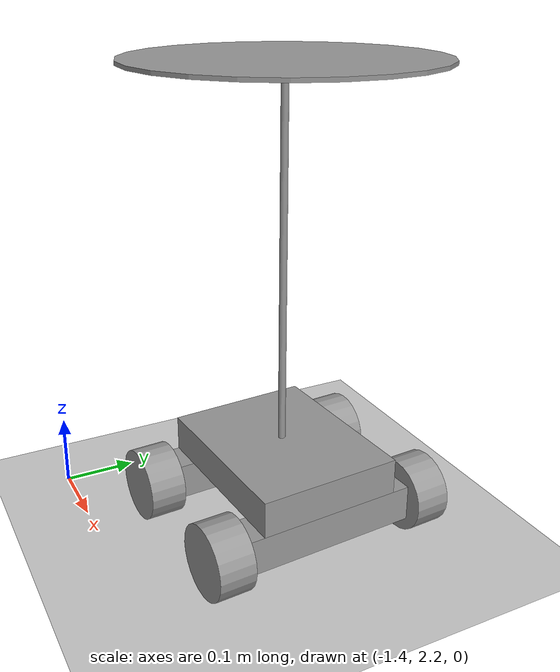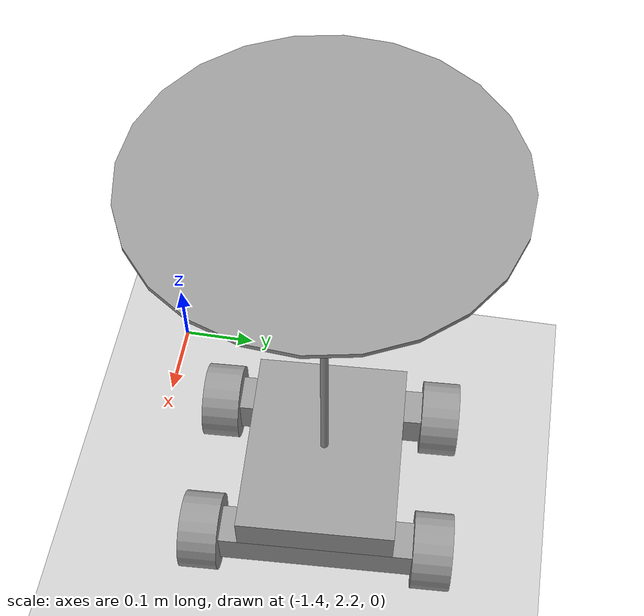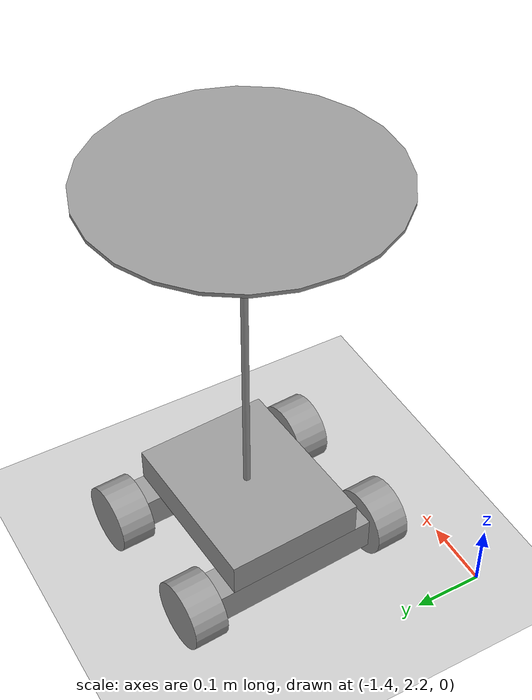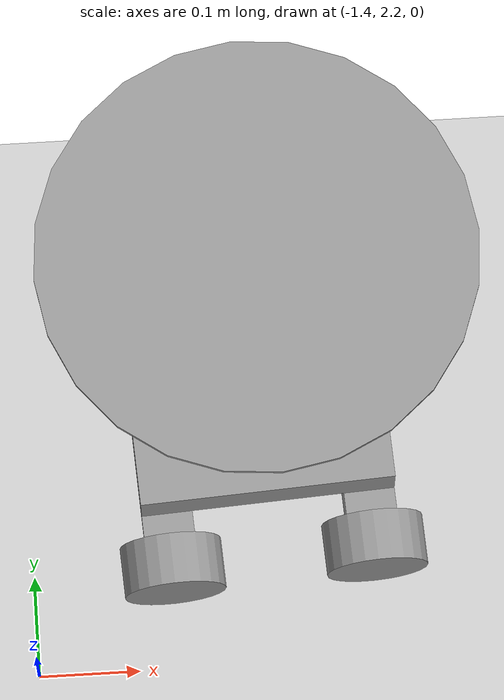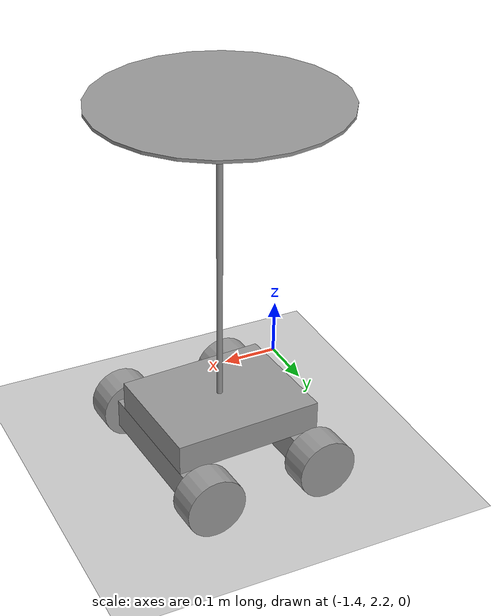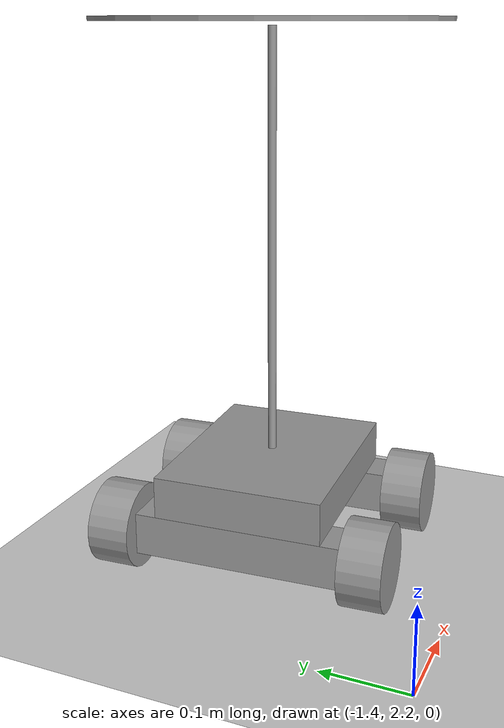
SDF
<sdf version="1.6">
 <world name="default">
  <model name="ground_plane">
   <static>1</static>
   <link name="link">
    <collision name="collision">
     <geometry><plane><normal>0 0 1</normal><size>100 100</size></plane></geometry>
     <surface><friction><ode><mu>100</mu><mu2>50</mu2></ode></friction></surface>
    </collision>
    <visual name="visual">
     <cast_shadows>0</cast_shadows>
     <geometry><plane><normal>0 0 1</normal><size>100 100</size></plane></geometry>
     <material>
      <script><uri>file://media/materials/scripts/gazebo.material</uri><name>Gazebo/Grey</name></script>
     </material>
    </visual>
   </link>
  </model>
  <model name="carry-o-matic">
   <link name="link_0">
    <pose>0.1 -0 -0.049667 0 -0 0</pose>
    <inertial>
     <mass>1</mass>
     <inertia>
      <ixx>0.166667</ixx>
      <ixy>0</ixy>
      <ixz>0</ixz>
      <iyy>0.166667</iyy>
      <iyz>0</iyz>
      <izz>0.166667</izz>
     </inertia>
    </inertial>
    <visual name="visual">
     <geometry><box><size>0.05 0.25 0.05</size></box></geometry>
     <material>
      <lighting>1</lighting>
      <script><uri>file://media/materials/scripts/gazebo.material</uri><name>Gazebo/Grey</name></script>
      <ambient>0.3 0.3 0.3 1</ambient>
      <diffuse>0.7 0.7 0.7 1</diffuse>
      <specular>0.01 0.01 0.01 1</specular>
      <emissive>0 0 0 1</emissive>
      <shader type="vertex"><normal_map>__default__</normal_map></shader>
     </material>
    </visual>
    <collision name="collision">
     <geometry><box><size>0.05 0.25 0.05</size></box></geometry>
     <surface>
      <friction>
       <ode><mu>1</mu><mu2>1</mu2><fdir1>0 0 0</fdir1><slip1>0</slip1><slip2>0</slip2></ode>
       <torsional>
        <coefficient>1</coefficient>
        <patch_radius>0</patch_radius>
        <surface_radius>0</surface_radius>
        <use_patch_radius>1</use_patch_radius>
        <ode><slip>0</slip></ode>
       </torsional>
      </friction>
      <bounce><restitution_coefficient>0</restitution_coefficient><threshold>1e+06</threshold></bounce>
      <contact>
       <collide_without_contact>0</collide_without_contact>
       <collide_without_contact_bitmask>1</collide_without_contact_bitmask>
       <collide_bitmask>1</collide_bitmask>
       <ode>
        <soft_cfm>0</soft_cfm>
        <soft_erp>0.2</soft_erp>
        <kp>1e+13</kp>
        <kd>1</kd>
        <max_vel>0.01</max_vel>
        <min_depth>0</min_depth>
       </ode>
       <bullet>
        <split_impulse>1</split_impulse>
        <split_impulse_penetration_threshold>-0.01</split_impulse_penetration_threshold>
        <soft_cfm>0</soft_cfm>
        <soft_erp>0.2</soft_erp>
        <kp>1e+13</kp>
        <kd>1</kd>
       </bullet>
      </contact>
     </surface>
    </collision>
   </link>
   <link name="link_0_clone">
    <pose>-0.1 -0 -0.049667 0 -0 0</pose>
    <inertial>
     <mass>1</mass>
     <inertia>
      <ixx>0.166667</ixx>
      <ixy>0</ixy>
      <ixz>0</ixz>
      <iyy>0.166667</iyy>
      <iyz>0</iyz>
      <izz>0.166667</izz>
     </inertia>
    </inertial>
    <visual name="visual">
     <geometry><box><size>0.05 0.25 0.05</size></box></geometry>
     <material>
      <lighting>1</lighting>
      <script><uri>file://media/materials/scripts/gazebo.material</uri><name>Gazebo/Grey</name></script>
      <ambient>0.3 0.3 0.3 1</ambient>
      <diffuse>0.7 0.7 0.7 1</diffuse>
      <specular>0.01 0.01 0.01 1</specular>
      <emissive>0 0 0 1</emissive>
      <shader type="vertex"><normal_map>__default__</normal_map></shader>
     </material>
    </visual>
    <collision name="collision">
     <geometry><box><size>0.05 0.25 0.05</size></box></geometry>
     <surface>
      <friction>
       <ode><mu>1</mu><mu2>1</mu2><fdir1>0 0 0</fdir1><slip1>0</slip1><slip2>0</slip2></ode>
       <torsional>
        <coefficient>1</coefficient>
        <patch_radius>0</patch_radius>
        <surface_radius>0</surface_radius>
        <use_patch_radius>1</use_patch_radius>
        <ode><slip>0</slip></ode>
       </torsional>
      </friction>
      <bounce><restitution_coefficient>0</restitution_coefficient><threshold>1e+06</threshold></bounce>
      <contact>
       <collide_without_contact>0</collide_without_contact>
       <collide_without_contact_bitmask>1</collide_without_contact_bitmask>
       <collide_bitmask>1</collide_bitmask>
       <ode>
        <soft_cfm>0</soft_cfm>
        <soft_erp>0.2</soft_erp>
        <kp>1e+13</kp>
        <kd>1</kd>
        <max_vel>0.01</max_vel>
        <min_depth>0</min_depth>
       </ode>
       <bullet>
        <split_impulse>1</split_impulse>
        <split_impulse_penetration_threshold>-0.01</split_impulse_penetration_threshold>
        <soft_cfm>0</soft_cfm>
        <soft_erp>0.2</soft_erp>
        <kp>1e+13</kp>
        <kd>1</kd>
       </bullet>
      </contact>
     </surface>
    </collision>
   </link>
   <link name="link_1">
    <pose>0.1 -0.150013 -0.049667 1.5707 -0 0</pose>
    <inertial>
     <mass>1</mass>
     <inertia><ixx>0.145833</ixx><ixy>0</ixy><ixz>0</ixz><iyy>0.145833</iyy><iyz>0</iyz><izz>0.125</izz></inertia>
    </inertial>
    <visual name="visual">
     <geometry><cylinder><radius>0.05</radius><length>0.05</length></cylinder></geometry>
     <material>
      <lighting>1</lighting>
      <script><uri>file://media/materials/scripts/gazebo.material</uri><name>Gazebo/Grey</name></script>
      <ambient>0.3 0.3 0.3 1</ambient>
      <diffuse>0.7 0.7 0.7 1</diffuse>
      <specular>0.01 0.01 0.01 1</specular>
      <emissive>0 0 0 1</emissive>
      <shader type="vertex"><normal_map>__default__</normal_map></shader>
     </material>
    </visual>
    <collision name="collision">
     <geometry><cylinder><radius>0.05</radius><length>0.05</length></cylinder></geometry>
     <surface>
      <friction>
       <ode><mu>1</mu><mu2>1</mu2><fdir1>0 0 0</fdir1><slip1>0</slip1><slip2>0</slip2></ode>
       <torsional>
        <coefficient>1</coefficient>
        <patch_radius>0</patch_radius>
        <surface_radius>0</surface_radius>
        <use_patch_radius>1</use_patch_radius>
        <ode><slip>0</slip></ode>
       </torsional>
      </friction>
      <bounce><restitution_coefficient>0</restitution_coefficient><threshold>1e+06</threshold></bounce>
      <contact>
       <collide_without_contact>0</collide_without_contact>
       <collide_without_contact_bitmask>1</collide_without_contact_bitmask>
       <collide_bitmask>1</collide_bitmask>
       <ode>
        <soft_cfm>0</soft_cfm>
        <soft_erp>0.2</soft_erp>
        <kp>1e+13</kp>
        <kd>1</kd>
        <max_vel>0.01</max_vel>
        <min_depth>0</min_depth>
       </ode>
       <bullet>
        <split_impulse>1</split_impulse>
        <split_impulse_penetration_threshold>-0.01</split_impulse_penetration_threshold>
        <soft_cfm>0</soft_cfm>
        <soft_erp>0.2</soft_erp>
        <kp>1e+13</kp>
        <kd>1</kd>
       </bullet>
      </contact>
     </surface>
    </collision>
   </link>
   <link name="link_1_clone">
    <pose>0.1 0.15 -0.049667 1.5707 -0 0</pose>
    <inertial>
     <mass>1</mass>
     <inertia><ixx>0.145833</ixx><ixy>0</ixy><ixz>0</ixz><iyy>0.145833</iyy><iyz>0</iyz><izz>0.125</izz></inertia>
    </inertial>
    <visual name="visual">
     <geometry><cylinder><radius>0.05</radius><length>0.05</length></cylinder></geometry>
     <material>
      <lighting>1</lighting>
      <script><uri>file://media/materials/scripts/gazebo.material</uri><name>Gazebo/Grey</name></script>
      <ambient>0.3 0.3 0.3 1</ambient>
      <diffuse>0.7 0.7 0.7 1</diffuse>
      <specular>0.01 0.01 0.01 1</specular>
      <emissive>0 0 0 1</emissive>
      <shader type="vertex"><normal_map>__default__</normal_map></shader>
     </material>
    </visual>
    <collision name="collision">
     <geometry><cylinder><radius>0.05</radius><length>0.05</length></cylinder></geometry>
     <surface>
      <friction>
       <ode><mu>1</mu><mu2>1</mu2><fdir1>0 0 0</fdir1><slip1>0</slip1><slip2>0</slip2></ode>
       <torsional>
        <coefficient>1</coefficient>
        <patch_radius>0</patch_radius>
        <surface_radius>0</surface_radius>
        <use_patch_radius>1</use_patch_radius>
        <ode><slip>0</slip></ode>
       </torsional>
      </friction>
      <bounce><restitution_coefficient>0</restitution_coefficient><threshold>1e+06</threshold></bounce>
      <contact>
       <collide_without_contact>0</collide_without_contact>
       <collide_without_contact_bitmask>1</collide_without_contact_bitmask>
       <collide_bitmask>1</collide_bitmask>
       <ode>
        <soft_cfm>0</soft_cfm>
        <soft_erp>0.2</soft_erp>
        <kp>1e+13</kp>
        <kd>1</kd>
        <max_vel>0.01</max_vel>
        <min_depth>0</min_depth>
       </ode>
       <bullet>
        <split_impulse>1</split_impulse>
        <split_impulse_penetration_threshold>-0.01</split_impulse_penetration_threshold>
        <soft_cfm>0</soft_cfm>
        <soft_erp>0.2</soft_erp>
        <kp>1e+13</kp>
        <kd>1</kd>
       </bullet>
      </contact>
     </surface>
    </collision>
   </link>
   <link name="link_1_clone_0">
    <pose>-0.1 -0.150005 -0.049667 1.5707 -0 0</pose>
    <inertial>
     <mass>1</mass>
     <inertia><ixx>0.145833</ixx><ixy>0</ixy><ixz>0</ixz><iyy>0.145833</iyy><iyz>0</iyz><izz>0.125</izz></inertia>
    </inertial>
    <visual name="visual">
     <geometry><cylinder><radius>0.05</radius><length>0.05</length></cylinder></geometry>
     <material>
      <lighting>1</lighting>
      <script><uri>file://media/materials/scripts/gazebo.material</uri><name>Gazebo/Grey</name></script>
      <ambient>0.3 0.3 0.3 1</ambient>
      <diffuse>0.7 0.7 0.7 1</diffuse>
      <specular>0.01 0.01 0.01 1</specular>
      <emissive>0 0 0 1</emissive>
      <shader type="vertex"><normal_map>__default__</normal_map></shader>
     </material>
    </visual>
    <collision name="collision">
     <geometry><cylinder><radius>0.05</radius><length>0.05</length></cylinder></geometry>
     <surface>
      <friction>
       <ode><mu>1</mu><mu2>1</mu2><fdir1>0 0 0</fdir1><slip1>0</slip1><slip2>0</slip2></ode>
       <torsional>
        <coefficient>1</coefficient>
        <patch_radius>0</patch_radius>
        <surface_radius>0</surface_radius>
        <use_patch_radius>1</use_patch_radius>
        <ode><slip>0</slip></ode>
       </torsional>
      </friction>
      <bounce><restitution_coefficient>0</restitution_coefficient><threshold>1e+06</threshold></bounce>
      <contact>
       <collide_without_contact>0</collide_without_contact>
       <collide_without_contact_bitmask>1</collide_without_contact_bitmask>
       <collide_bitmask>1</collide_bitmask>
       <ode>
        <soft_cfm>0</soft_cfm>
        <soft_erp>0.2</soft_erp>
        <kp>1e+13</kp>
        <kd>1</kd>
        <max_vel>0.01</max_vel>
        <min_depth>0</min_depth>
       </ode>
       <bullet>
        <split_impulse>1</split_impulse>
        <split_impulse_penetration_threshold>-0.01</split_impulse_penetration_threshold>
        <soft_cfm>0</soft_cfm>
        <soft_erp>0.2</soft_erp>
        <kp>1e+13</kp>
        <kd>1</kd>
       </bullet>
      </contact>
     </surface>
    </collision>
   </link>
   <link name="link_1_clone_1">
    <pose>-0.1 0.150005 -0.049667 1.5707 -0 0</pose>
    <inertial>
     <mass>1</mass>
     <inertia><ixx>0.145833</ixx><ixy>0</ixy><ixz>0</ixz><iyy>0.145833</iyy><iyz>0</iyz><izz>0.125</izz></inertia>
    </inertial>
    <visual name="visual">
     <geometry><cylinder><radius>0.05</radius><length>0.05</length></cylinder></geometry>
     <material>
      <lighting>1</lighting>
      <script><uri>file://media/materials/scripts/gazebo.material</uri><name>Gazebo/Grey</name></script>
      <ambient>0.3 0.3 0.3 1</ambient>
      <diffuse>0.7 0.7 0.7 1</diffuse>
      <specular>0.01 0.01 0.01 1</specular>
      <emissive>0 0 0 1</emissive>
      <shader type="vertex"><normal_map>__default__</normal_map></shader>
     </material>
    </visual>
    <collision name="collision">
     <geometry><cylinder><radius>0.05</radius><length>0.05</length></cylinder></geometry>
     <surface>
      <friction>
       <ode><mu>1</mu><mu2>1</mu2><fdir1>0 0 0</fdir1><slip1>0</slip1><slip2>0</slip2></ode>
       <torsional>
        <coefficient>1</coefficient>
        <patch_radius>0</patch_radius>
        <surface_radius>0</surface_radius>
        <use_patch_radius>1</use_patch_radius>
        <ode><slip>0</slip></ode>
       </torsional>
      </friction>
      <bounce><restitution_coefficient>0</restitution_coefficient><threshold>1e+06</threshold></bounce>
      <contact>
       <collide_without_contact>0</collide_without_contact>
       <collide_without_contact_bitmask>1</collide_without_contact_bitmask>
       <collide_bitmask>1</collide_bitmask>
       <ode>
        <soft_cfm>0</soft_cfm>
        <soft_erp>0.2</soft_erp>
        <kp>1e+13</kp>
        <kd>1</kd>
        <max_vel>0.01</max_vel>
        <min_depth>0</min_depth>
       </ode>
       <bullet>
        <split_impulse>1</split_impulse>
        <split_impulse_penetration_threshold>-0.01</split_impulse_penetration_threshold>
        <soft_cfm>0</soft_cfm>
        <soft_erp>0.2</soft_erp>
        <kp>1e+13</kp>
        <kd>1</kd>
       </bullet>
      </contact>
     </surface>
    </collision>
   </link>
   <link name="link_2">
    <pose>0 -0 0.000333 0 -0 0</pose>
    <inertial>
     <mass>1</mass>
     <inertia>
      <ixx>0.166667</ixx>
      <ixy>0</ixy>
      <ixz>0</ixz>
      <iyy>0.166667</iyy>
      <iyz>0</iyz>
      <izz>0.166667</izz>
     </inertia>
    </inertial>
    <visual name="visual">
     <geometry><box><size>0.25 0.2 0.05</size></box></geometry>
     <material>
      <lighting>1</lighting>
      <script><uri>file://media/materials/scripts/gazebo.material</uri><name>Gazebo/Grey</name></script>
      <ambient>0.3 0.3 0.3 1</ambient>
      <diffuse>0.7 0.7 0.7 1</diffuse>
      <specular>0.01 0.01 0.01 1</specular>
      <emissive>0 0 0 1</emissive>
      <shader type="vertex"><normal_map>__default__</normal_map></shader>
     </material>
    </visual>
    <collision name="collision">
     <geometry><box><size>0.25 0.2 0.05</size></box></geometry>
     <surface>
      <friction>
       <ode><mu>1</mu><mu2>1</mu2><fdir1>0 0 0</fdir1><slip1>0</slip1><slip2>0</slip2></ode>
       <torsional>
        <coefficient>1</coefficient>
        <patch_radius>0</patch_radius>
        <surface_radius>0</surface_radius>
        <use_patch_radius>1</use_patch_radius>
        <ode><slip>0</slip></ode>
       </torsional>
      </friction>
      <bounce><restitution_coefficient>0</restitution_coefficient><threshold>1e+06</threshold></bounce>
      <contact>
       <collide_without_contact>0</collide_without_contact>
       <collide_without_contact_bitmask>1</collide_without_contact_bitmask>
       <collide_bitmask>1</collide_bitmask>
       <ode>
        <soft_cfm>0</soft_cfm>
        <soft_erp>0.2</soft_erp>
        <kp>1e+13</kp>
        <kd>1</kd>
        <max_vel>0.01</max_vel>
        <min_depth>0</min_depth>
       </ode>
       <bullet>
        <split_impulse>1</split_impulse>
        <split_impulse_penetration_threshold>-0.01</split_impulse_penetration_threshold>
        <soft_cfm>0</soft_cfm>
        <soft_erp>0.2</soft_erp>
        <kp>1e+13</kp>
        <kd>1</kd>
       </bullet>
      </contact>
     </surface>
    </collision>
   </link>
   <link name="link_3">
    <pose>0 -2e-06 0.277476 0 -0 0</pose>
    <inertial>
     <mass>1</mass>
     <inertia><ixx>0.145833</ixx><ixy>0</ixy><ixz>0</ixz><iyy>0.145833</iyy><iyz>0</iyz><izz>0.125</izz></inertia>
    </inertial>
    <visual name="visual">
     <geometry><cylinder><radius>0.005</radius><length>0.5</length></cylinder></geometry>
     <material>
      <lighting>1</lighting>
      <script><uri>file://media/materials/scripts/gazebo.material</uri><name>Gazebo/Grey</name></script>
      <ambient>0.3 0.3 0.3 1</ambient>
      <diffuse>0.7 0.7 0.7 1</diffuse>
      <specular>0.01 0.01 0.01 1</specular>
      <emissive>0 0 0 1</emissive>
      <shader type="vertex"><normal_map>__default__</normal_map></shader>
     </material>
    </visual>
    <collision name="collision">
     <geometry><cylinder><radius>0.005</radius><length>0.5</length></cylinder></geometry>
     <surface>
      <friction>
       <ode><mu>1</mu><mu2>1</mu2><fdir1>0 0 0</fdir1><slip1>0</slip1><slip2>0</slip2></ode>
       <torsional>
        <coefficient>1</coefficient>
        <patch_radius>0</patch_radius>
        <surface_radius>0</surface_radius>
        <use_patch_radius>1</use_patch_radius>
        <ode><slip>0</slip></ode>
       </torsional>
      </friction>
      <bounce><restitution_coefficient>0</restitution_coefficient><threshold>1e+06</threshold></bounce>
      <contact>
       <collide_without_contact>0</collide_without_contact>
       <collide_without_contact_bitmask>1</collide_without_contact_bitmask>
       <collide_bitmask>1</collide_bitmask>
       <ode>
        <soft_cfm>0</soft_cfm>
        <soft_erp>0.2</soft_erp>
        <kp>1e+13</kp>
        <kd>1</kd>
        <max_vel>0.01</max_vel>
        <min_depth>0</min_depth>
       </ode>
       <bullet>
        <split_impulse>1</split_impulse>
        <split_impulse_penetration_threshold>-0.01</split_impulse_penetration_threshold>
        <soft_cfm>0</soft_cfm>
        <soft_erp>0.2</soft_erp>
        <kp>1e+13</kp>
        <kd>1</kd>
       </bullet>
      </contact>
     </surface>
    </collision>
   </link>
   <link name="link_4">
    <pose>0 -2e-06 0.534476 0 -0 0</pose>
    <inertial>
     <mass>1</mass>
     <inertia><ixx>0.145833</ixx><ixy>0</ixy><ixz>0</ixz><iyy>0.145833</iyy><iyz>0</iyz><izz>0.125</izz></inertia>
    </inertial>
    <visual name="visual">
     <geometry><cylinder><radius>0.2</radius><length>0.005</length></cylinder></geometry>
     <material>
      <lighting>1</lighting>
      <script><uri>file://media/materials/scripts/gazebo.material</uri><name>Gazebo/Grey</name></script>
      <ambient>0.3 0.3 0.3 1</ambient>
      <diffuse>0.7 0.7 0.7 1</diffuse>
      <specular>0.01 0.01 0.01 1</specular>
      <emissive>0 0 0 1</emissive>
      <shader type="vertex"><normal_map>__default__</normal_map></shader>
     </material>
    </visual>
    <collision name="collision">
     <geometry><cylinder><radius>0.2</radius><length>0.005</length></cylinder></geometry>
     <surface>
      <friction>
       <ode><mu>1</mu><mu2>1</mu2><fdir1>0 0 0</fdir1><slip1>0</slip1><slip2>0</slip2></ode>
       <torsional>
        <coefficient>1</coefficient>
        <patch_radius>0</patch_radius>
        <surface_radius>0</surface_radius>
        <use_patch_radius>1</use_patch_radius>
        <ode><slip>0</slip></ode>
       </torsional>
      </friction>
      <bounce><restitution_coefficient>0</restitution_coefficient><threshold>1e+06</threshold></bounce>
      <contact>
       <collide_without_contact>0</collide_without_contact>
       <collide_without_contact_bitmask>1</collide_without_contact_bitmask>
       <collide_bitmask>1</collide_bitmask>
       <ode>
        <soft_cfm>0</soft_cfm>
        <soft_erp>0.2</soft_erp>
        <kp>1e+13</kp>
        <kd>1</kd>
        <max_vel>0.01</max_vel>
        <min_depth>0</min_depth>
       </ode>
       <bullet>
        <split_impulse>1</split_impulse>
        <split_impulse_penetration_threshold>-0.01</split_impulse_penetration_threshold>
        <soft_cfm>0</soft_cfm>
        <soft_erp>0.2</soft_erp>
        <kp>1e+13</kp>
        <kd>1</kd>
       </bullet>
      </contact>
     </surface>
    </collision>
   </link>
   <joint name="link_0_JOINT_0" type="revolute">
    <parent>link_0</parent>
    <child>link_1</child>
    <axis>
     <xyz>0 0 1</xyz>
     <use_parent_model_frame>0</use_parent_model_frame>
     <limit>
      <lower>-1.79769e+308</lower>
      <upper>1.79769e+308</upper>
      <effort>-1</effort>
      <velocity>-1</velocity>
     </limit>
     <dynamics>
      <spring_reference>0</spring_reference>
      <spring_stiffness>0</spring_stiffness>
      <damping>0</damping>
     </dynamics>
    </axis>
    <physics>
     <ode><limit><cfm>0</cfm><erp>0.2</erp></limit><suspension><cfm>0</cfm><erp>0.2</erp></suspension></ode>
    </physics>
   </joint>
   <joint name="link_0_JOINT_1" type="revolute">
    <parent>link_0</parent>
    <child>link_1_clone</child>
    <axis>
     <xyz>0 0 1</xyz>
     <use_parent_model_frame>0</use_parent_model_frame>
     <limit>
      <lower>-1.79769e+308</lower>
      <upper>1.79769e+308</upper>
      <effort>-1</effort>
      <velocity>-1</velocity>
     </limit>
     <dynamics>
      <spring_reference>0</spring_reference>
      <spring_stiffness>0</spring_stiffness>
      <damping>0</damping>
     </dynamics>
    </axis>
    <physics>
     <ode><limit><cfm>0</cfm><erp>0.2</erp></limit><suspension><cfm>0</cfm><erp>0.2</erp></suspension></ode>
    </physics>
   </joint>
   <joint name="link_0_clone_JOINT_2" type="revolute">
    <parent>link_0_clone</parent>
    <child>link_1_clone_0</child>
    <axis>
     <xyz>0 0 1</xyz>
     <use_parent_model_frame>0</use_parent_model_frame>
     <limit>
      <lower>-1.79769e+308</lower>
      <upper>1.79769e+308</upper>
      <effort>-1</effort>
      <velocity>-1</velocity>
     </limit>
     <dynamics>
      <spring_reference>0</spring_reference>
      <spring_stiffness>0</spring_stiffness>
      <damping>0</damping>
     </dynamics>
    </axis>
    <physics>
     <ode><limit><cfm>0</cfm><erp>0.2</erp></limit><suspension><cfm>0</cfm><erp>0.2</erp></suspension></ode>
    </physics>
   </joint>
   <joint name="link_0_clone_JOINT_3" type="revolute">
    <parent>link_0_clone</parent>
    <child>link_1_clone_1</child>
    <axis>
     <xyz>0 0 1</xyz>
     <use_parent_model_frame>0</use_parent_model_frame>
     <limit>
      <lower>-1.79769e+308</lower>
      <upper>1.79769e+308</upper>
      <effort>-1</effort>
      <velocity>-1</velocity>
     </limit>
     <dynamics>
      <spring_reference>0</spring_reference>
      <spring_stiffness>0</spring_stiffness>
      <damping>0</damping>
     </dynamics>
    </axis>
    <physics>
     <ode><limit><cfm>0</cfm><erp>0.2</erp></limit><suspension><cfm>0</cfm><erp>0.2</erp></suspension></ode>
    </physics>
   </joint>
   <joint name="link_2_JOINT_4" type="fixed">
    <parent>link_2</parent>
    <child>link_0_clone</child>
    <physics>
     <ode><limit><cfm>0</cfm><erp>0.2</erp></limit><suspension><cfm>0</cfm><erp>0.2</erp></suspension></ode>
    </physics>
   </joint>
   <joint name="link_2_JOINT_5" type="fixed">
    <parent>link_2</parent>
    <child>link_0</child>
    <physics>
     <ode><limit><cfm>0</cfm><erp>0.2</erp></limit><suspension><cfm>0</cfm><erp>0.2</erp></suspension></ode>
    </physics>
   </joint>
   <joint name="link_2_JOINT_6" type="fixed">
    <parent>link_2</parent>
    <child>link_3</child>
    <physics>
     <ode><limit><cfm>0</cfm><erp>0.2</erp></limit><suspension><cfm>0</cfm><erp>0.2</erp></suspension></ode>
    </physics>
   </joint>
   <joint name="link_3_JOINT_7" type="fixed">
    <parent>link_3</parent>
    <child>link_4</child>
    <physics>
     <ode><limit><cfm>0</cfm><erp>0.2</erp></limit><suspension><cfm>0</cfm><erp>0.2</erp></suspension></ode>
    </physics>
   </joint>
   <static>0</static>
   <pose>-1.17141 2.4468 0.099668 1e-05 -6e-06 0.058965</pose>
  </model>
 </world>
</sdf>
